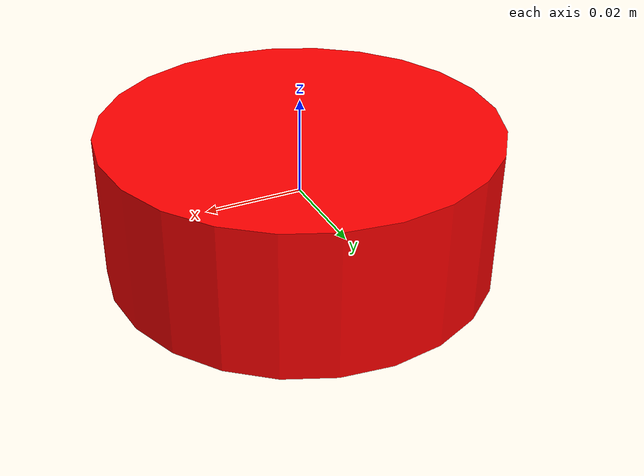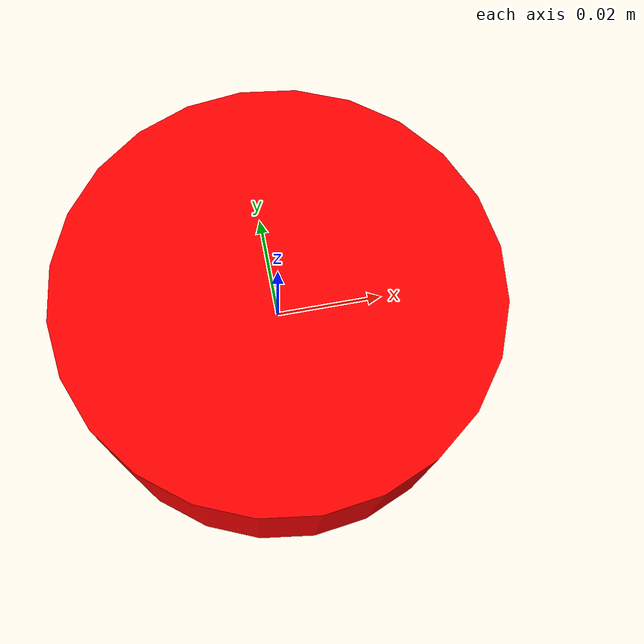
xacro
<?xml version="1.0"?>
<robot name="puck" xmlns:xacro="http://www.ros.org/wiki/xacro">
  <xacro:arg name="name" default="puck"/>
  <xacro:arg name="radius" default="0.04"/>
  <xacro:arg name="height" default="0.03"/>
  <xacro:arg name="mass" default="0.05"/>
  <xacro:arg name="r" default="1.0"/>
  <xacro:arg name="g" default="0.0"/>
  <xacro:arg name="b" default="0.0"/>
  <xacro:arg name="gazebo_material" default="Gazebo/Red"/>

  <link name="$(arg name)_link">
    <inertial>
      <mass value="$(arg mass)"/>
      <inertia ixx="2e-5" ixy="0" ixz="0" iyy="2e-5" iyz="0" izz="2e-5"/>
    </inertial>

    <visual>
      <geometry>
        <cylinder radius="$(arg radius)" length="$(arg height)"/>
      </geometry>
      <material name="$(arg name)_color">
        <color rgba="$(arg r) $(arg g) $(arg b) 1.0"/>
      </material>
    </visual>

    <collision>
      <geometry>
        <cylinder radius="$(arg radius)" length="$(arg height)"/>
      </geometry>
      <surface>
        <friction>
          <ode>
            <mu>1.0</mu>
            <mu2>1.0</mu2>
          </ode>
        </friction>
      </surface>
    </collision>
  </link>

  <gazebo reference="$(arg name)_link">
    <material>$(arg gazebo_material)</material>
  </gazebo>
</robot>
